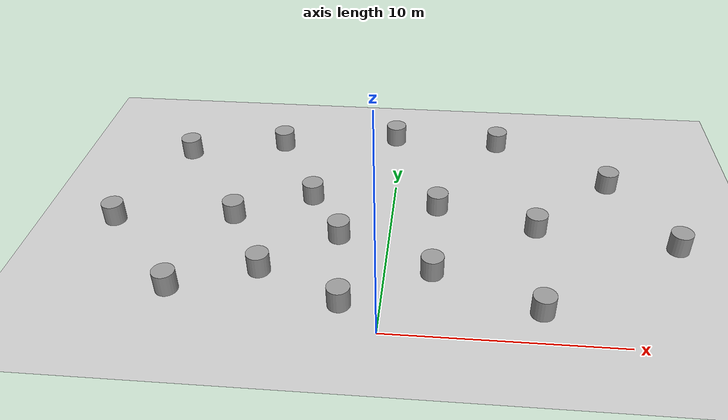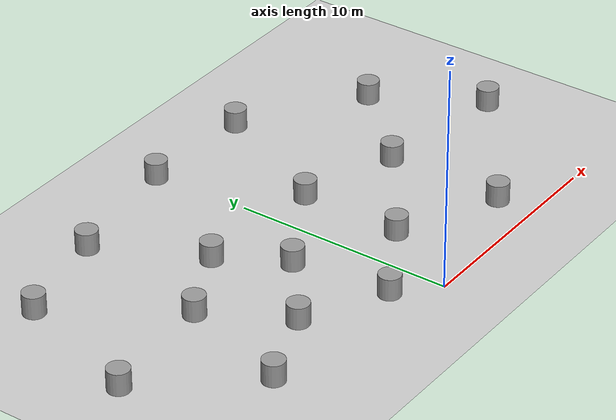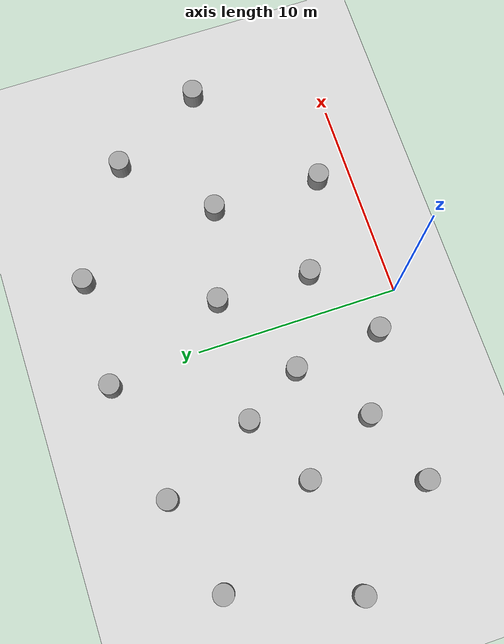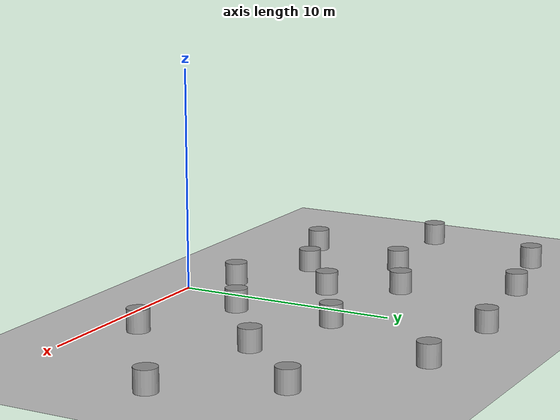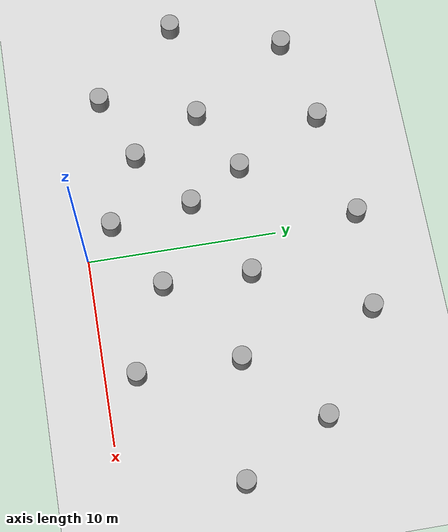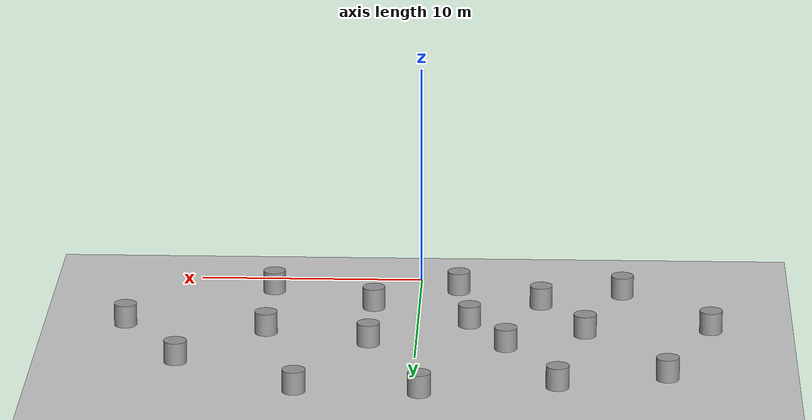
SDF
<sdf version="1.7">
 <world name="default">
  <model name="ground_plane">
   <static>1</static>
   <link name="link">
    <collision name="collision">
     <geometry><plane><normal>0 0 1</normal><size>100 100</size></plane></geometry>
     <surface>
      <contact><collide_bitmask>65535</collide_bitmask></contact>
      <friction><ode><mu>100</mu><mu2>50</mu2></ode></friction>
     </surface>
    </collision>
    <visual name="visual">
     <cast_shadows>0</cast_shadows>
     <geometry><plane><normal>0 0 1</normal><size>100 100</size></plane></geometry>
     <material>
      <script><uri>file://media/materials/scripts/gazebo.material</uri><name>Gazebo/Grey</name></script>
     </material>
    </visual>
   </link>
  </model>
  <model name="fix_cylinder">
   <link name="link">
    <inertial>
     <mass>1</mass>
     <inertia><ixx>0.145833</ixx><ixy>0</ixy><ixz>0</ixz><iyy>0.145833</iyy><iyz>0</iyz><izz>0.125</izz></inertia>
    </inertial>
    <visual name="visual">
     <geometry><cylinder><radius>0.5</radius><length>1</length></cylinder></geometry>
     <material>
      <script><name>Gazebo/Grey</name><uri>file://media/materials/scripts/gazebo.material</uri></script>
      <shader type="pixel"/>
     </material>
    </visual>
    <collision name="collision">
     <geometry><cylinder><radius>0.5</radius><length>1</length></cylinder></geometry>
     <surface>
      <friction>
       <ode><mu>1</mu><mu2>1</mu2><fdir1>0 0 0</fdir1><slip1>0</slip1><slip2>0</slip2></ode>
       <torsional>
        <coefficient>1</coefficient>
        <patch_radius>0</patch_radius>
        <surface_radius>0</surface_radius>
        <use_patch_radius>1</use_patch_radius>
        <ode><slip>0</slip></ode>
       </torsional>
      </friction>
      <bounce><restitution_coefficient>0</restitution_coefficient><threshold>1e+06</threshold></bounce>
      <contact>
       <collide_without_contact>0</collide_without_contact>
       <collide_without_contact_bitmask>1</collide_without_contact_bitmask>
       <collide_bitmask>1</collide_bitmask>
       <ode>
        <soft_cfm>0</soft_cfm>
        <soft_erp>0.2</soft_erp>
        <kp>1e+13</kp>
        <kd>1</kd>
        <max_vel>0.01</max_vel>
        <min_depth>0</min_depth>
       </ode>
       <bullet>
        <split_impulse>1</split_impulse>
        <split_impulse_penetration_threshold>-0.01</split_impulse_penetration_threshold>
        <soft_cfm>0</soft_cfm>
        <soft_erp>0.2</soft_erp>
        <kp>1e+13</kp>
        <kd>1</kd>
       </bullet>
      </contact>
     </surface>
    </collision>
   </link>
   <static>1</static>
   <pose>2.029 3.70132 0.5 0 -0 0</pose>
  </model>
  <model name="fix_cylinder_clone">
   <link name="link">
    <inertial>
     <mass>1</mass>
     <inertia><ixx>0.145833</ixx><ixy>0</ixy><ixz>0</ixz><iyy>0.145833</iyy><iyz>0</iyz><izz>0.125</izz></inertia>
    </inertial>
    <visual name="visual">
     <geometry><cylinder><radius>0.5</radius><length>1</length></cylinder></geometry>
     <material>
      <script><name>Gazebo/Grey</name><uri>file://media/materials/scripts/gazebo.material</uri></script>
      <shader type="pixel"/>
     </material>
    </visual>
    <collision name="collision">
     <geometry><cylinder><radius>0.5</radius><length>1</length></cylinder></geometry>
     <surface>
      <friction>
       <ode><mu>1</mu><mu2>1</mu2><fdir1>0 0 0</fdir1><slip1>0</slip1><slip2>0</slip2></ode>
       <torsional>
        <coefficient>1</coefficient>
        <patch_radius>0</patch_radius>
        <surface_radius>0</surface_radius>
        <use_patch_radius>1</use_patch_radius>
        <ode><slip>0</slip></ode>
       </torsional>
      </friction>
      <bounce><restitution_coefficient>0</restitution_coefficient><threshold>1e+06</threshold></bounce>
      <contact>
       <collide_without_contact>0</collide_without_contact>
       <collide_without_contact_bitmask>1</collide_without_contact_bitmask>
       <collide_bitmask>1</collide_bitmask>
       <ode>
        <soft_cfm>0</soft_cfm>
        <soft_erp>0.2</soft_erp>
        <kp>1e+13</kp>
        <kd>1</kd>
        <max_vel>0.01</max_vel>
        <min_depth>0</min_depth>
       </ode>
       <bullet>
        <split_impulse>1</split_impulse>
        <split_impulse_penetration_threshold>-0.01</split_impulse_penetration_threshold>
        <soft_cfm>0</soft_cfm>
        <soft_erp>0.2</soft_erp>
        <kp>1e+13</kp>
        <kd>1</kd>
       </bullet>
      </contact>
     </surface>
    </collision>
   </link>
   <static>1</static>
   <pose>2.08016 8.35993 0.5 0 -0 0</pose>
  </model>
  <model name="fix_cylinder_clone_0">
   <link name="link">
    <inertial>
     <mass>1</mass>
     <inertia><ixx>0.145833</ixx><ixy>0</ixy><ixz>0</ixz><iyy>0.145833</iyy><iyz>0</iyz><izz>0.125</izz></inertia>
    </inertial>
    <visual name="visual">
     <geometry><cylinder><radius>0.5</radius><length>1</length></cylinder></geometry>
     <material>
      <script><name>Gazebo/Grey</name><uri>file://media/materials/scripts/gazebo.material</uri></script>
      <shader type="pixel"/>
     </material>
    </visual>
    <collision name="collision">
     <geometry><cylinder><radius>0.5</radius><length>1</length></cylinder></geometry>
     <surface>
      <friction>
       <ode><mu>1</mu><mu2>1</mu2><fdir1>0 0 0</fdir1><slip1>0</slip1><slip2>0</slip2></ode>
       <torsional>
        <coefficient>1</coefficient>
        <patch_radius>0</patch_radius>
        <surface_radius>0</surface_radius>
        <use_patch_radius>1</use_patch_radius>
        <ode><slip>0</slip></ode>
       </torsional>
      </friction>
      <bounce><restitution_coefficient>0</restitution_coefficient><threshold>1e+06</threshold></bounce>
      <contact>
       <collide_without_contact>0</collide_without_contact>
       <collide_without_contact_bitmask>1</collide_without_contact_bitmask>
       <collide_bitmask>1</collide_bitmask>
       <ode>
        <soft_cfm>0</soft_cfm>
        <soft_erp>0.2</soft_erp>
        <kp>1e+13</kp>
        <kd>1</kd>
        <max_vel>0.01</max_vel>
        <min_depth>0</min_depth>
       </ode>
       <bullet>
        <split_impulse>1</split_impulse>
        <split_impulse_penetration_threshold>-0.01</split_impulse_penetration_threshold>
        <soft_cfm>0</soft_cfm>
        <soft_erp>0.2</soft_erp>
        <kp>1e+13</kp>
        <kd>1</kd>
       </bullet>
      </contact>
     </surface>
    </collision>
   </link>
   <static>1</static>
   <pose>6.6453 7.06224 0.5 0 -0 0</pose>
  </model>
  <model name="fix_cylinder_clone_1">
   <link name="link">
    <inertial>
     <mass>1</mass>
     <inertia><ixx>0.145833</ixx><ixy>0</ixy><ixz>0</ixz><iyy>0.145833</iyy><iyz>0</iyz><izz>0.125</izz></inertia>
    </inertial>
    <visual name="visual">
     <geometry><cylinder><radius>0.5</radius><length>1</length></cylinder></geometry>
     <material>
      <script><name>Gazebo/Grey</name><uri>file://media/materials/scripts/gazebo.material</uri></script>
      <shader type="pixel"/>
     </material>
    </visual>
    <collision name="collision">
     <geometry><cylinder><radius>0.5</radius><length>1</length></cylinder></geometry>
     <surface>
      <friction>
       <ode><mu>1</mu><mu2>1</mu2><fdir1>0 0 0</fdir1><slip1>0</slip1><slip2>0</slip2></ode>
       <torsional>
        <coefficient>1</coefficient>
        <patch_radius>0</patch_radius>
        <surface_radius>0</surface_radius>
        <use_patch_radius>1</use_patch_radius>
        <ode><slip>0</slip></ode>
       </torsional>
      </friction>
      <bounce><restitution_coefficient>0</restitution_coefficient><threshold>1e+06</threshold></bounce>
      <contact>
       <collide_without_contact>0</collide_without_contact>
       <collide_without_contact_bitmask>1</collide_without_contact_bitmask>
       <collide_bitmask>1</collide_bitmask>
       <ode>
        <soft_cfm>0</soft_cfm>
        <soft_erp>0.2</soft_erp>
        <kp>1e+13</kp>
        <kd>1</kd>
        <max_vel>0.01</max_vel>
        <min_depth>0</min_depth>
       </ode>
       <bullet>
        <split_impulse>1</split_impulse>
        <split_impulse_penetration_threshold>-0.01</split_impulse_penetration_threshold>
        <soft_cfm>0</soft_cfm>
        <soft_erp>0.2</soft_erp>
        <kp>1e+13</kp>
        <kd>1</kd>
       </bullet>
      </contact>
     </surface>
    </collision>
   </link>
   <static>1</static>
   <pose>6.6031 1.66555 0.5 0 -0 0</pose>
  </model>
  <model name="fix_cylinder_clone_3">
   <link name="link">
    <inertial>
     <mass>1</mass>
     <inertia><ixx>0.145833</ixx><ixy>0</ixy><ixz>0</ixz><iyy>0.145833</iyy><iyz>0</iyz><izz>0.125</izz></inertia>
    </inertial>
    <visual name="visual">
     <geometry><cylinder><radius>0.5</radius><length>1</length></cylinder></geometry>
     <material>
      <script><name>Gazebo/Grey</name><uri>file://media/materials/scripts/gazebo.material</uri></script>
      <shader type="pixel"/>
     </material>
    </visual>
    <collision name="collision">
     <geometry><cylinder><radius>0.5</radius><length>1</length></cylinder></geometry>
     <surface>
      <friction>
       <ode><mu>1</mu><mu2>1</mu2><fdir1>0 0 0</fdir1><slip1>0</slip1><slip2>0</slip2></ode>
       <torsional>
        <coefficient>1</coefficient>
        <patch_radius>0</patch_radius>
        <surface_radius>0</surface_radius>
        <use_patch_radius>1</use_patch_radius>
        <ode><slip>0</slip></ode>
       </torsional>
      </friction>
      <bounce><restitution_coefficient>0</restitution_coefficient><threshold>1e+06</threshold></bounce>
      <contact>
       <collide_without_contact>0</collide_without_contact>
       <collide_without_contact_bitmask>1</collide_without_contact_bitmask>
       <collide_bitmask>1</collide_bitmask>
       <ode>
        <soft_cfm>0</soft_cfm>
        <soft_erp>0.2</soft_erp>
        <kp>1e+13</kp>
        <kd>1</kd>
        <max_vel>0.01</max_vel>
        <min_depth>0</min_depth>
       </ode>
       <bullet>
        <split_impulse>1</split_impulse>
        <split_impulse_penetration_threshold>-0.01</split_impulse_penetration_threshold>
        <soft_cfm>0</soft_cfm>
        <soft_erp>0.2</soft_erp>
        <kp>1e+13</kp>
        <kd>1</kd>
       </bullet>
      </contact>
     </surface>
    </collision>
   </link>
   <static>1</static>
   <pose>-1.71249 1.48962 0.5 0 -0 0</pose>
  </model>
  <model name="fix_cylinder_clone_4">
   <link name="link">
    <inertial>
     <mass>1</mass>
     <inertia><ixx>0.145833</ixx><ixy>0</ixy><ixz>0</ixz><iyy>0.145833</iyy><iyz>0</iyz><izz>0.125</izz></inertia>
    </inertial>
    <visual name="visual">
     <geometry><cylinder><radius>0.5</radius><length>1</length></cylinder></geometry>
     <material>
      <script><name>Gazebo/Grey</name><uri>file://media/materials/scripts/gazebo.material</uri></script>
      <shader type="pixel"/>
     </material>
    </visual>
    <collision name="collision">
     <geometry><cylinder><radius>0.5</radius><length>1</length></cylinder></geometry>
     <surface>
      <friction>
       <ode><mu>1</mu><mu2>1</mu2><fdir1>0 0 0</fdir1><slip1>0</slip1><slip2>0</slip2></ode>
       <torsional>
        <coefficient>1</coefficient>
        <patch_radius>0</patch_radius>
        <surface_radius>0</surface_radius>
        <use_patch_radius>1</use_patch_radius>
        <ode><slip>0</slip></ode>
       </torsional>
      </friction>
      <bounce><restitution_coefficient>0</restitution_coefficient><threshold>1e+06</threshold></bounce>
      <contact>
       <collide_without_contact>0</collide_without_contact>
       <collide_without_contact_bitmask>1</collide_without_contact_bitmask>
       <collide_bitmask>1</collide_bitmask>
       <ode>
        <soft_cfm>0</soft_cfm>
        <soft_erp>0.2</soft_erp>
        <kp>1e+13</kp>
        <kd>1</kd>
        <max_vel>0.01</max_vel>
        <min_depth>0</min_depth>
       </ode>
       <bullet>
        <split_impulse>1</split_impulse>
        <split_impulse_penetration_threshold>-0.01</split_impulse_penetration_threshold>
        <soft_cfm>0</soft_cfm>
        <soft_erp>0.2</soft_erp>
        <kp>1e+13</kp>
        <kd>1</kd>
       </bullet>
      </contact>
     </surface>
    </collision>
   </link>
   <static>1</static>
   <pose>-2.2924 5.85227 0.5 0 -0 0</pose>
  </model>
  <model name="fix_cylinder_clone_5">
   <link name="link">
    <inertial>
     <mass>1</mass>
     <inertia><ixx>0.145833</ixx><ixy>0</ixy><ixz>0</ixz><iyy>0.145833</iyy><iyz>0</iyz><izz>0.125</izz></inertia>
    </inertial>
    <visual name="visual">
     <geometry><cylinder><radius>0.5</radius><length>1</length></cylinder></geometry>
     <material>
      <script><name>Gazebo/Grey</name><uri>file://media/materials/scripts/gazebo.material</uri></script>
      <shader type="pixel"/>
     </material>
    </visual>
    <collision name="collision">
     <geometry><cylinder><radius>0.5</radius><length>1</length></cylinder></geometry>
     <surface>
      <friction>
       <ode><mu>1</mu><mu2>1</mu2><fdir1>0 0 0</fdir1><slip1>0</slip1><slip2>0</slip2></ode>
       <torsional>
        <coefficient>1</coefficient>
        <patch_radius>0</patch_radius>
        <surface_radius>0</surface_radius>
        <use_patch_radius>1</use_patch_radius>
        <ode><slip>0</slip></ode>
       </torsional>
      </friction>
      <bounce><restitution_coefficient>0</restitution_coefficient><threshold>1e+06</threshold></bounce>
      <contact>
       <collide_without_contact>0</collide_without_contact>
       <collide_without_contact_bitmask>1</collide_without_contact_bitmask>
       <collide_bitmask>1</collide_bitmask>
       <ode>
        <soft_cfm>0</soft_cfm>
        <soft_erp>0.2</soft_erp>
        <kp>1e+13</kp>
        <kd>1</kd>
        <max_vel>0.01</max_vel>
        <min_depth>0</min_depth>
       </ode>
       <bullet>
        <split_impulse>1</split_impulse>
        <split_impulse_penetration_threshold>-0.01</split_impulse_penetration_threshold>
        <soft_cfm>0</soft_cfm>
        <soft_erp>0.2</soft_erp>
        <kp>1e+13</kp>
        <kd>1</kd>
       </bullet>
      </contact>
     </surface>
    </collision>
   </link>
   <static>1</static>
   <pose>-3.93691 8.73421 0.5 0 -0 0</pose>
  </model>
  <model name="fix_cylinder_clone_6">
   <link name="link">
    <inertial>
     <mass>1</mass>
     <inertia><ixx>0.145833</ixx><ixy>0</ixy><ixz>0</ixz><iyy>0.145833</iyy><iyz>0</iyz><izz>0.125</izz></inertia>
    </inertial>
    <visual name="visual">
     <geometry><cylinder><radius>0.5</radius><length>1</length></cylinder></geometry>
     <material>
      <script><name>Gazebo/Grey</name><uri>file://media/materials/scripts/gazebo.material</uri></script>
      <shader type="pixel"/>
     </material>
    </visual>
    <collision name="collision">
     <geometry><cylinder><radius>0.5</radius><length>1</length></cylinder></geometry>
     <surface>
      <friction>
       <ode><mu>1</mu><mu2>1</mu2><fdir1>0 0 0</fdir1><slip1>0</slip1><slip2>0</slip2></ode>
       <torsional>
        <coefficient>1</coefficient>
        <patch_radius>0</patch_radius>
        <surface_radius>0</surface_radius>
        <use_patch_radius>1</use_patch_radius>
        <ode><slip>0</slip></ode>
       </torsional>
      </friction>
      <bounce><restitution_coefficient>0</restitution_coefficient><threshold>1e+06</threshold></bounce>
      <contact>
       <collide_without_contact>0</collide_without_contact>
       <collide_without_contact_bitmask>1</collide_without_contact_bitmask>
       <collide_bitmask>1</collide_bitmask>
       <ode>
        <soft_cfm>0</soft_cfm>
        <soft_erp>0.2</soft_erp>
        <kp>1e+13</kp>
        <kd>1</kd>
        <max_vel>0.01</max_vel>
        <min_depth>0</min_depth>
       </ode>
       <bullet>
        <split_impulse>1</split_impulse>
        <split_impulse_penetration_threshold>-0.01</split_impulse_penetration_threshold>
        <soft_cfm>0</soft_cfm>
        <soft_erp>0.2</soft_erp>
        <kp>1e+13</kp>
        <kd>1</kd>
       </bullet>
      </contact>
     </surface>
    </collision>
   </link>
   <static>1</static>
   <pose>-7.39724 6.95811 0.5 0 -0 0</pose>
  </model>
  <model name="fix_cylinder_clone_7">
   <link name="link">
    <inertial>
     <mass>1</mass>
     <inertia><ixx>0.145833</ixx><ixy>0</ixy><ixz>0</ixz><iyy>0.145833</iyy><iyz>0</iyz><izz>0.125</izz></inertia>
    </inertial>
    <visual name="visual">
     <geometry><cylinder><radius>0.5</radius><length>1</length></cylinder></geometry>
     <material>
      <script><name>Gazebo/Grey</name><uri>file://media/materials/scripts/gazebo.material</uri></script>
      <shader type="pixel"/>
     </material>
    </visual>
    <collision name="collision">
     <geometry><cylinder><radius>0.5</radius><length>1</length></cylinder></geometry>
     <surface>
      <friction>
       <ode><mu>1</mu><mu2>1</mu2><fdir1>0 0 0</fdir1><slip1>0</slip1><slip2>0</slip2></ode>
       <torsional>
        <coefficient>1</coefficient>
        <patch_radius>0</patch_radius>
        <surface_radius>0</surface_radius>
        <use_patch_radius>1</use_patch_radius>
        <ode><slip>0</slip></ode>
       </torsional>
      </friction>
      <bounce><restitution_coefficient>0</restitution_coefficient><threshold>1e+06</threshold></bounce>
      <contact>
       <collide_without_contact>0</collide_without_contact>
       <collide_without_contact_bitmask>1</collide_without_contact_bitmask>
       <collide_bitmask>1</collide_bitmask>
       <ode>
        <soft_cfm>0</soft_cfm>
        <soft_erp>0.2</soft_erp>
        <kp>1e+13</kp>
        <kd>1</kd>
        <max_vel>0.01</max_vel>
        <min_depth>0</min_depth>
       </ode>
       <bullet>
        <split_impulse>1</split_impulse>
        <split_impulse_penetration_threshold>-0.01</split_impulse_penetration_threshold>
        <soft_cfm>0</soft_cfm>
        <soft_erp>0.2</soft_erp>
        <kp>1e+13</kp>
        <kd>1</kd>
       </bullet>
      </contact>
     </surface>
    </collision>
   </link>
   <static>1</static>
   <pose>-9.07629 1.8456 0.5 0 -0 0</pose>
  </model>
  <model name="fix_cylinder_clone_8">
   <link name="link">
    <inertial>
     <mass>1</mass>
     <inertia><ixx>0.145833</ixx><ixy>0</ixy><ixz>0</ixz><iyy>0.145833</iyy><iyz>0</iyz><izz>0.125</izz></inertia>
    </inertial>
    <visual name="visual">
     <geometry><cylinder><radius>0.5</radius><length>1</length></cylinder></geometry>
     <material>
      <script><name>Gazebo/Grey</name><uri>file://media/materials/scripts/gazebo.material</uri></script>
      <shader type="pixel"/>
     </material>
    </visual>
    <collision name="collision">
     <geometry><cylinder><radius>0.5</radius><length>1</length></cylinder></geometry>
     <surface>
      <friction>
       <ode><mu>1</mu><mu2>1</mu2><fdir1>0 0 0</fdir1><slip1>0</slip1><slip2>0</slip2></ode>
       <torsional>
        <coefficient>1</coefficient>
        <patch_radius>0</patch_radius>
        <surface_radius>0</surface_radius>
        <use_patch_radius>1</use_patch_radius>
        <ode><slip>0</slip></ode>
       </torsional>
      </friction>
      <bounce><restitution_coefficient>0</restitution_coefficient><threshold>1e+06</threshold></bounce>
      <contact>
       <collide_without_contact>0</collide_without_contact>
       <collide_without_contact_bitmask>1</collide_without_contact_bitmask>
       <collide_bitmask>1</collide_bitmask>
       <ode>
        <soft_cfm>0</soft_cfm>
        <soft_erp>0.2</soft_erp>
        <kp>1e+13</kp>
        <kd>1</kd>
        <max_vel>0.01</max_vel>
        <min_depth>0</min_depth>
       </ode>
       <bullet>
        <split_impulse>1</split_impulse>
        <split_impulse_penetration_threshold>-0.01</split_impulse_penetration_threshold>
        <soft_cfm>0</soft_cfm>
        <soft_erp>0.2</soft_erp>
        <kp>1e+13</kp>
        <kd>1</kd>
       </bullet>
      </contact>
     </surface>
    </collision>
   </link>
   <static>1</static>
   <pose>-5.43713 3.30604 0.5 0 -0 0</pose>
  </model>
  <model name="fix_cylinder_clone_18">
   <link name="link">
    <inertial>
     <mass>1</mass>
     <inertia><ixx>0.145833</ixx><ixy>0</ixy><ixz>0</ixz><iyy>0.145833</iyy><iyz>0</iyz><izz>0.125</izz></inertia>
    </inertial>
    <visual name="visual">
     <geometry><cylinder><radius>0.5</radius><length>1</length></cylinder></geometry>
     <material>
      <script><name>Gazebo/Grey</name><uri>file://media/materials/scripts/gazebo.material</uri></script>
      <shader type="pixel"/>
     </material>
    </visual>
    <collision name="collision">
     <geometry><cylinder><radius>0.5</radius><length>1</length></cylinder></geometry>
     <surface>
      <friction>
       <ode><mu>1</mu><mu2>1</mu2><fdir1>0 0 0</fdir1><slip1>0</slip1><slip2>0</slip2></ode>
       <torsional>
        <coefficient>1</coefficient>
        <patch_radius>0</patch_radius>
        <surface_radius>0</surface_radius>
        <use_patch_radius>1</use_patch_radius>
        <ode><slip>0</slip></ode>
       </torsional>
      </friction>
      <bounce><restitution_coefficient>0</restitution_coefficient><threshold>1e+06</threshold></bounce>
      <contact>
       <collide_without_contact>0</collide_without_contact>
       <collide_without_contact_bitmask>1</collide_without_contact_bitmask>
       <collide_bitmask>1</collide_bitmask>
       <ode>
        <soft_cfm>0</soft_cfm>
        <soft_erp>0.2</soft_erp>
        <kp>1e+13</kp>
        <kd>1</kd>
        <max_vel>0.01</max_vel>
        <min_depth>0</min_depth>
       </ode>
       <bullet>
        <split_impulse>1</split_impulse>
        <split_impulse_penetration_threshold>-0.01</split_impulse_penetration_threshold>
        <soft_cfm>0</soft_cfm>
        <soft_erp>0.2</soft_erp>
        <kp>1e+13</kp>
        <kd>1</kd>
       </bullet>
      </contact>
     </surface>
    </collision>
   </link>
   <static>1</static>
   <pose>12.928 6.22086 0.5 0 -0 0</pose>
  </model>
  <model name="fix_cylinder_clone_19">
   <link name="link">
    <inertial>
     <mass>1</mass>
     <inertia><ixx>0.145833</ixx><ixy>0</ixy><ixz>0</ixz><iyy>0.145833</iyy><iyz>0</iyz><izz>0.125</izz></inertia>
    </inertial>
    <visual name="visual">
     <geometry><cylinder><radius>0.5</radius><length>1</length></cylinder></geometry>
     <material>
      <script><name>Gazebo/Grey</name><uri>file://media/materials/scripts/gazebo.material</uri></script>
      <shader type="pixel"/>
     </material>
    </visual>
    <collision name="collision">
     <geometry><cylinder><radius>0.5</radius><length>1</length></cylinder></geometry>
     <surface>
      <friction>
       <ode><mu>1</mu><mu2>1</mu2><fdir1>0 0 0</fdir1><slip1>0</slip1><slip2>0</slip2></ode>
       <torsional>
        <coefficient>1</coefficient>
        <patch_radius>0</patch_radius>
        <surface_radius>0</surface_radius>
        <use_patch_radius>1</use_patch_radius>
        <ode><slip>0</slip></ode>
       </torsional>
      </friction>
      <bounce><restitution_coefficient>0</restitution_coefficient><threshold>1e+06</threshold></bounce>
      <contact>
       <collide_without_contact>0</collide_without_contact>
       <collide_without_contact_bitmask>1</collide_without_contact_bitmask>
       <collide_bitmask>1</collide_bitmask>
       <ode>
        <soft_cfm>0</soft_cfm>
        <soft_erp>0.2</soft_erp>
        <kp>1e+13</kp>
        <kd>1</kd>
        <max_vel>0.01</max_vel>
        <min_depth>0</min_depth>
       </ode>
       <bullet>
        <split_impulse>1</split_impulse>
        <split_impulse_penetration_threshold>-0.01</split_impulse_penetration_threshold>
        <soft_cfm>0</soft_cfm>
        <soft_erp>0.2</soft_erp>
        <kp>1e+13</kp>
        <kd>1</kd>
       </bullet>
      </contact>
     </surface>
    </collision>
   </link>
   <static>1</static>
   <pose>10.3386 10.8476 0.5 0 -0 0</pose>
  </model>
  <model name="fix_cylinder_clone_20">
   <link name="link">
    <inertial>
     <mass>1</mass>
     <inertia><ixx>0.145833</ixx><ixy>0</ixy><ixz>0</ixz><iyy>0.145833</iyy><iyz>0</iyz><izz>0.125</izz></inertia>
    </inertial>
    <visual name="visual">
     <geometry><cylinder><radius>0.5</radius><length>1</length></cylinder></geometry>
     <material>
      <script><name>Gazebo/Grey</name><uri>file://media/materials/scripts/gazebo.material</uri></script>
      <shader type="pixel"/>
     </material>
    </visual>
    <collision name="collision">
     <geometry><cylinder><radius>0.5</radius><length>1</length></cylinder></geometry>
     <surface>
      <friction>
       <ode><mu>1</mu><mu2>1</mu2><fdir1>0 0 0</fdir1><slip1>0</slip1><slip2>0</slip2></ode>
       <torsional>
        <coefficient>1</coefficient>
        <patch_radius>0</patch_radius>
        <surface_radius>0</surface_radius>
        <use_patch_radius>1</use_patch_radius>
        <ode><slip>0</slip></ode>
       </torsional>
      </friction>
      <bounce><restitution_coefficient>0</restitution_coefficient><threshold>1e+06</threshold></bounce>
      <contact>
       <collide_without_contact>0</collide_without_contact>
       <collide_without_contact_bitmask>1</collide_without_contact_bitmask>
       <collide_bitmask>1</collide_bitmask>
       <ode>
        <soft_cfm>0</soft_cfm>
        <soft_erp>0.2</soft_erp>
        <kp>1e+13</kp>
        <kd>1</kd>
        <max_vel>0.01</max_vel>
        <min_depth>0</min_depth>
       </ode>
       <bullet>
        <split_impulse>1</split_impulse>
        <split_impulse_penetration_threshold>-0.01</split_impulse_penetration_threshold>
        <soft_cfm>0</soft_cfm>
        <soft_erp>0.2</soft_erp>
        <kp>1e+13</kp>
        <kd>1</kd>
       </bullet>
      </contact>
     </surface>
    </collision>
   </link>
   <static>1</static>
   <pose>5.00963 14.2098 0.5 0 -0 0</pose>
  </model>
  <model name="fix_cylinder_clone_21">
   <link name="link">
    <inertial>
     <mass>1</mass>
     <inertia><ixx>0.145833</ixx><ixy>0</ixy><ixz>0</ixz><iyy>0.145833</iyy><iyz>0</iyz><izz>0.125</izz></inertia>
    </inertial>
    <visual name="visual">
     <geometry><cylinder><radius>0.5</radius><length>1</length></cylinder></geometry>
     <material>
      <script><name>Gazebo/Grey</name><uri>file://media/materials/scripts/gazebo.material</uri></script>
      <shader type="pixel"/>
     </material>
    </visual>
    <collision name="collision">
     <geometry><cylinder><radius>0.5</radius><length>1</length></cylinder></geometry>
     <surface>
      <friction>
       <ode><mu>1</mu><mu2>1</mu2><fdir1>0 0 0</fdir1><slip1>0</slip1><slip2>0</slip2></ode>
       <torsional>
        <coefficient>1</coefficient>
        <patch_radius>0</patch_radius>
        <surface_radius>0</surface_radius>
        <use_patch_radius>1</use_patch_radius>
        <ode><slip>0</slip></ode>
       </torsional>
      </friction>
      <bounce><restitution_coefficient>0</restitution_coefficient><threshold>1e+06</threshold></bounce>
      <contact>
       <collide_without_contact>0</collide_without_contact>
       <collide_without_contact_bitmask>1</collide_without_contact_bitmask>
       <collide_bitmask>1</collide_bitmask>
       <ode>
        <soft_cfm>0</soft_cfm>
        <soft_erp>0.2</soft_erp>
        <kp>1e+13</kp>
        <kd>1</kd>
        <max_vel>0.01</max_vel>
        <min_depth>0</min_depth>
       </ode>
       <bullet>
        <split_impulse>1</split_impulse>
        <split_impulse_penetration_threshold>-0.01</split_impulse_penetration_threshold>
        <soft_cfm>0</soft_cfm>
        <soft_erp>0.2</soft_erp>
        <kp>1e+13</kp>
        <kd>1</kd>
       </bullet>
      </contact>
     </surface>
    </collision>
   </link>
   <static>1</static>
   <pose>-0.337598 14.4088 0.5 0 -0 0</pose>
  </model>
  <model name="fix_cylinder_clone_22">
   <link name="link">
    <inertial>
     <mass>1</mass>
     <inertia><ixx>0.145833</ixx><ixy>0</ixy><ixz>0</ixz><iyy>0.145833</iyy><iyz>0</iyz><izz>0.125</izz></inertia>
    </inertial>
    <visual name="visual">
     <geometry><cylinder><radius>0.5</radius><length>1</length></cylinder></geometry>
     <material>
      <script><name>Gazebo/Grey</name><uri>file://media/materials/scripts/gazebo.material</uri></script>
      <shader type="pixel"/>
     </material>
    </visual>
    <collision name="collision">
     <geometry><cylinder><radius>0.5</radius><length>1</length></cylinder></geometry>
     <surface>
      <friction>
       <ode><mu>1</mu><mu2>1</mu2><fdir1>0 0 0</fdir1><slip1>0</slip1><slip2>0</slip2></ode>
       <torsional>
        <coefficient>1</coefficient>
        <patch_radius>0</patch_radius>
        <surface_radius>0</surface_radius>
        <use_patch_radius>1</use_patch_radius>
        <ode><slip>0</slip></ode>
       </torsional>
      </friction>
      <bounce><restitution_coefficient>0</restitution_coefficient><threshold>1e+06</threshold></bounce>
      <contact>
       <collide_without_contact>0</collide_without_contact>
       <collide_without_contact_bitmask>1</collide_without_contact_bitmask>
       <collide_bitmask>1</collide_bitmask>
       <ode>
        <soft_cfm>0</soft_cfm>
        <soft_erp>0.2</soft_erp>
        <kp>1e+13</kp>
        <kd>1</kd>
        <max_vel>0.01</max_vel>
        <min_depth>0</min_depth>
       </ode>
       <bullet>
        <split_impulse>1</split_impulse>
        <split_impulse_penetration_threshold>-0.01</split_impulse_penetration_threshold>
        <soft_cfm>0</soft_cfm>
        <soft_erp>0.2</soft_erp>
        <kp>1e+13</kp>
        <kd>1</kd>
       </bullet>
      </contact>
     </surface>
    </collision>
   </link>
   <static>1</static>
   <pose>-6.21815 13.3863 0.5 0 -0 0</pose>
  </model>
  <model name="fix_cylinder_clone_26">
   <link name="link">
    <inertial>
     <mass>1</mass>
     <inertia><ixx>0.145833</ixx><ixy>0</ixy><ixz>0</ixz><iyy>0.145833</iyy><iyz>0</iyz><izz>0.125</izz></inertia>
    </inertial>
    <visual name="visual">
     <geometry><cylinder><radius>0.5</radius><length>1</length></cylinder></geometry>
     <material>
      <script><name>Gazebo/Grey</name><uri>file://media/materials/scripts/gazebo.material</uri></script>
      <shader type="pixel"/>
     </material>
    </visual>
    <collision name="collision">
     <geometry><cylinder><radius>0.5</radius><length>1</length></cylinder></geometry>
     <surface>
      <friction>
       <ode><mu>1</mu><mu2>1</mu2><fdir1>0 0 0</fdir1><slip1>0</slip1><slip2>0</slip2></ode>
       <torsional>
        <coefficient>1</coefficient>
        <patch_radius>0</patch_radius>
        <surface_radius>0</surface_radius>
        <use_patch_radius>1</use_patch_radius>
        <ode><slip>0</slip></ode>
       </torsional>
      </friction>
      <bounce><restitution_coefficient>0</restitution_coefficient><threshold>1e+06</threshold></bounce>
      <contact>
       <collide_without_contact>0</collide_without_contact>
       <collide_without_contact_bitmask>1</collide_without_contact_bitmask>
       <collide_bitmask>1</collide_bitmask>
       <ode>
        <soft_cfm>0</soft_cfm>
        <soft_erp>0.2</soft_erp>
        <kp>1e+13</kp>
        <kd>1</kd>
        <max_vel>0.01</max_vel>
        <min_depth>0</min_depth>
       </ode>
       <bullet>
        <split_impulse>1</split_impulse>
        <split_impulse_penetration_threshold>-0.01</split_impulse_penetration_threshold>
        <soft_cfm>0</soft_cfm>
        <soft_erp>0.2</soft_erp>
        <kp>1e+13</kp>
        <kd>1</kd>
       </bullet>
      </contact>
     </surface>
    </collision>
   </link>
   <static>1</static>
   <pose>-12.9397 6.3305 0.5 0 -0 0</pose>
  </model>
  <model name="fix_cylinder_clone_27">
   <link name="link">
    <inertial>
     <mass>1</mass>
     <inertia><ixx>0.145833</ixx><ixy>0</ixy><ixz>0</ixz><iyy>0.145833</iyy><iyz>0</iyz><izz>0.125</izz></inertia>
    </inertial>
    <visual name="visual">
     <geometry><cylinder><radius>0.5</radius><length>1</length></cylinder></geometry>
     <material>
      <script><name>Gazebo/Grey</name><uri>file://media/materials/scripts/gazebo.material</uri></script>
      <shader type="pixel"/>
     </material>
    </visual>
    <collision name="collision">
     <geometry><cylinder><radius>0.5</radius><length>1</length></cylinder></geometry>
     <surface>
      <friction>
       <ode><mu>1</mu><mu2>1</mu2><fdir1>0 0 0</fdir1><slip1>0</slip1><slip2>0</slip2></ode>
       <torsional>
        <coefficient>1</coefficient>
        <patch_radius>0</patch_radius>
        <surface_radius>0</surface_radius>
        <use_patch_radius>1</use_patch_radius>
        <ode><slip>0</slip></ode>
       </torsional>
      </friction>
      <bounce><restitution_coefficient>0</restitution_coefficient><threshold>1e+06</threshold></bounce>
      <contact>
       <collide_without_contact>0</collide_without_contact>
       <collide_without_contact_bitmask>1</collide_without_contact_bitmask>
       <collide_bitmask>1</collide_bitmask>
       <ode>
        <soft_cfm>0</soft_cfm>
        <soft_erp>0.2</soft_erp>
        <kp>1e+13</kp>
        <kd>1</kd>
        <max_vel>0.01</max_vel>
        <min_depth>0</min_depth>
       </ode>
       <bullet>
        <split_impulse>1</split_impulse>
        <split_impulse_penetration_threshold>-0.01</split_impulse_penetration_threshold>
        <soft_cfm>0</soft_cfm>
        <soft_erp>0.2</soft_erp>
        <kp>1e+13</kp>
        <kd>1</kd>
       </bullet>
      </contact>
     </surface>
    </collision>
   </link>
   <static>1</static>
   <pose>-10.9332 12.2338 0.5 0 -0 0</pose>
  </model>
 </world>
</sdf>
